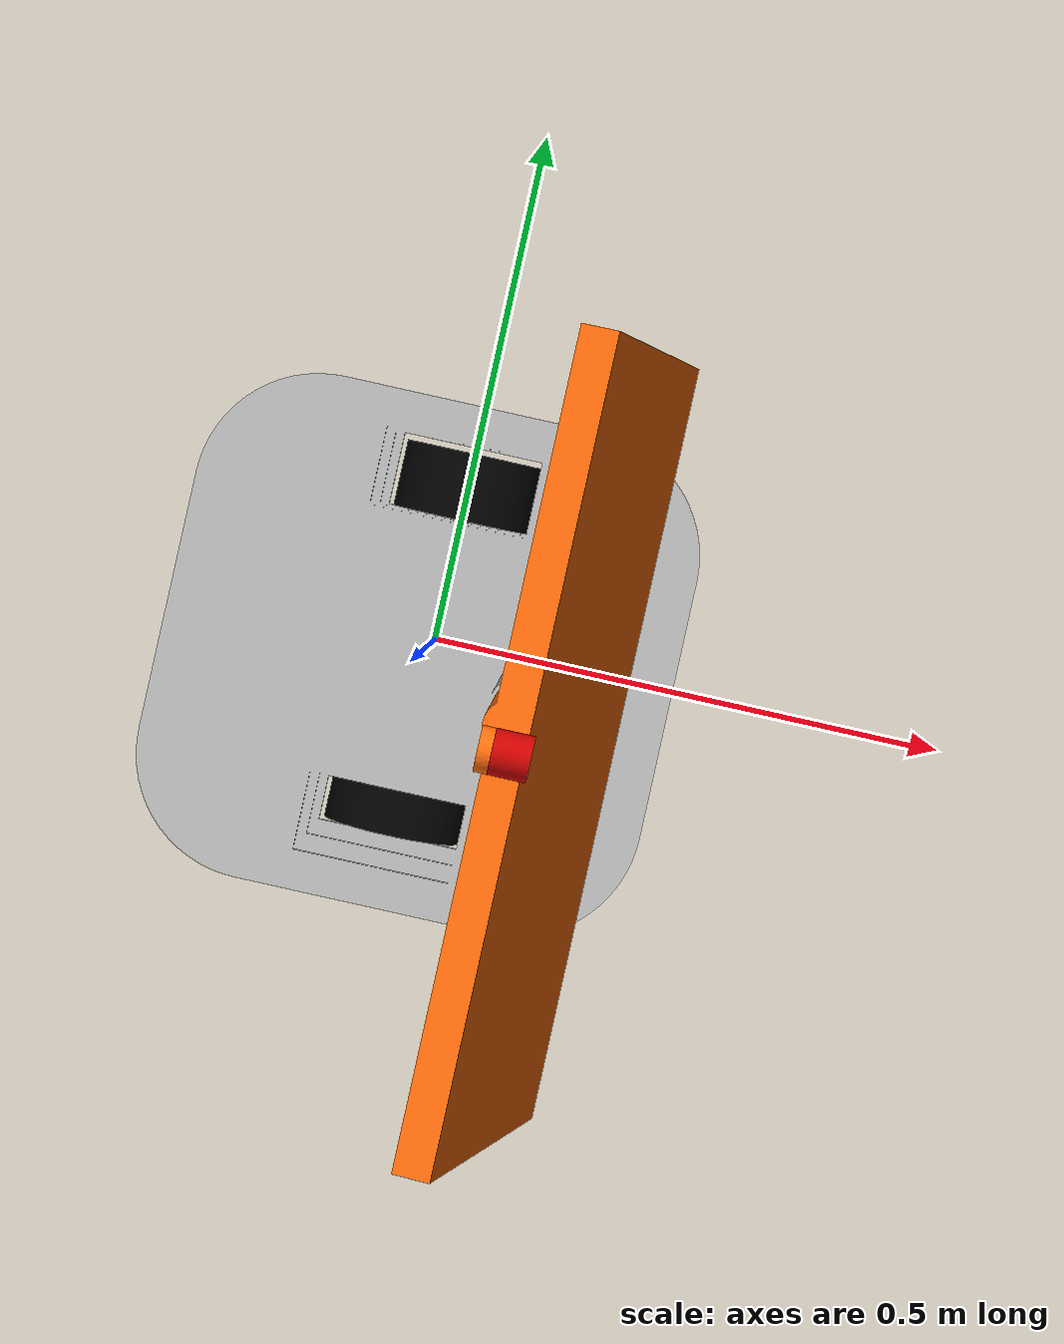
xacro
<?xml version="1.0" ?>
<robot name="TAYO_test" xmlns:xacro="http://www.ros.org/wiki/xacro">

<xacro:include filename="$(find TAYO_test_description)/urdf/materials.xacro" />
<xacro:include filename="$(find TAYO_test_description)/urdf/TAYO_test.trans" />
<xacro:include filename="$(find TAYO_test_description)/urdf/TAYO_test.gazebo" />
<link name="base_link">
  <inertial>
    <origin xyz="0.0028803173582110752 0.0 0.18605655046082087" rpy="0 0 0"/>
    <mass value="6.711469777903136"/>
    <inertia ixx="0.193004" iyy="0.210744" izz="0.166926" ixy="-0.0" iyz="-0.0" ixz="-0.007867"/>
  </inertial>
  <visual>
    <origin xyz="0 0 0" rpy="0 0 0"/>
    <geometry>
      <mesh filename="file://$(find TAYO_test_description)/meshes/base_link.stl" scale="0.001 0.001 0.001"/>
    </geometry>
    <material name="silver"/>
  </visual>
  <collision>
    <origin xyz="0 0 0" rpy="0 0 0"/>
    <geometry>
      <mesh filename="file://$(find TAYO_test_description)/meshes/base_link.stl" scale="0.001 0.001 0.001"/>
    </geometry>
  </collision>
</link>

<link name="right_wheel_1">
  <inertial>
    <origin xyz="-2.14128073229365e-17 -0.03200000000000003 0.0" rpy="0 0 0"/>
    <mass value="0.7900225877835323"/>
    <inertia ixx="0.001104" iyy="0.001669" izz="0.001104" ixy="-0.0" iyz="-0.0" ixz="-0.0"/>
  </inertial>
  <visual>
    <origin xyz="-0.0 0.12 -0.065" rpy="0 0 0"/>
    <geometry>
      <mesh filename="file://$(find TAYO_test_description)/meshes/right_wheel_1.stl" scale="0.001 0.001 0.001"/>
    </geometry>
    <material name="black"/>
  </visual>
  <collision>
    <origin xyz="-0.0 0.12 -0.065" rpy="0 0 0"/>
    <geometry>
      <mesh filename="file://$(find TAYO_test_description)/meshes/right_wheel_1.stl" scale="0.001 0.001 0.001"/>
    </geometry>
  </collision>
</link>

<link name="left_wheel_1">
  <inertial>
    <origin xyz="-2.14128073229365e-17 0.03200000000000003 0.0" rpy="0 0 0"/>
    <mass value="0.7900225877835323"/>
    <inertia ixx="0.001104" iyy="0.001669" izz="0.001104" ixy="-0.0" iyz="0.0" ixz="-0.0"/>
  </inertial>
  <visual>
    <origin xyz="-0.0 -0.12 -0.065" rpy="0 0 0"/>
    <geometry>
      <mesh filename="file://$(find TAYO_test_description)/meshes/left_wheel_1.stl" scale="0.001 0.001 0.001"/>
    </geometry>
    <material name="black"/>
  </visual>
  <collision>
    <origin xyz="-0.0 -0.12 -0.065" rpy="0 0 0"/>
    <geometry>
      <mesh filename="file://$(find TAYO_test_description)/meshes/left_wheel_1.stl" scale="0.001 0.001 0.001"/>
    </geometry>
  </collision>
</link>

<link name="actuator_1">
  <inertial>
    <origin xyz="0.028488110282179235 -1.0854817842170162e-16 0.28699337976007466" rpy="0 0 0"/>
    <mass value="14.478426699691301"/>
    <inertia ixx="0.629374" iyy="0.316333" izz="0.325608" ixy="-0.0" iyz="-0.0" ixz="0.004938"/>
  </inertial>
  <visual>
    <origin xyz="-0.1 -0.0 -0.818" rpy="0 0 0"/>
    <geometry>
      <mesh filename="file://$(find TAYO_test_description)/meshes/actuator_1.stl" scale="0.001 0.001 0.001"/>
    </geometry>
    <material name="orange"/>
  </visual>
  <collision>
    <origin xyz="-0.1 -0.0 -0.818" rpy="0 0 0"/>
    <geometry>
      <mesh filename="file://$(find TAYO_test_description)/meshes/actuator_1.stl" scale="0.001 0.001 0.001"/>
    </geometry>
  </collision>
</link>

<link name="lidar_1">
  <inertial>
    <origin xyz="0.0 6.153627405534786e-18 0.011250000000000038" rpy="0 0 0"/>
    <mass value="0.7251346379145354"/>
    <inertia ixx="0.000267" iyy="0.000267" izz="0.000474" ixy="0.0" iyz="0.0" ixz="0.0"/>
  </inertial>
  <visual>
    <origin xyz="-0.0 -0.0 -0.1697" rpy="0 0 0"/>
    <geometry>
      <mesh filename="file://$(find TAYO_test_description)/meshes/lidar_1.stl" scale="0.001 0.001 0.001"/>
    </geometry>
    <material name="red"/>
  </visual>
  <collision>
    <origin xyz="-0.0 -0.0 -0.1697" rpy="0 0 0"/>
    <geometry>
      <mesh filename="file://$(find TAYO_test_description)/meshes/lidar_1.stl" scale="0.001 0.001 0.001"/>
    </geometry>
  </collision>
</link>

<link name="imu_1">
  <inertial>
    <origin xyz="0.0 0.0 0.0010000000000000009" rpy="0 0 0"/>
    <mass value="0.006279999999999978"/>
    <inertia ixx="0.0" iyy="0.0" izz="0.0" ixy="0.0" iyz="-0.0" ixz="-0.0"/>
  </inertial>
  <visual>
    <origin xyz="-0.0 -0.0 -0.217" rpy="0 0 0"/>
    <geometry>
      <mesh filename="file://$(find TAYO_test_description)/meshes/imu_1.stl" scale="0.001 0.001 0.001"/>
    </geometry>
    <material name="blue"/>
  </visual>
  <collision>
    <origin xyz="-0.0 -0.0 -0.217" rpy="0 0 0"/>
    <geometry>
      <mesh filename="file://$(find TAYO_test_description)/meshes/imu_1.stl" scale="0.001 0.001 0.001"/>
    </geometry>
  </collision>
</link>

<link name="camera_1">
  <inertial>
    <origin xyz="0.012499999999999983 2.052428959883958e-17 0.0" rpy="0 0 0"/>
    <mass value="0.13872095061007444"/>
    <inertia ixx="1.6e-05" iyy="1.5e-05" izz="1.5e-05" ixy="0.0" iyz="0.0" ixz="-0.0"/>
  </inertial>
  <visual>
    <origin xyz="-0.094 -0.0 -1.32" rpy="0 0 0"/>
    <geometry>
      <mesh filename="file://$(find TAYO_test_description)/meshes/camera_1.stl" scale="0.001 0.001 0.001"/>
    </geometry>
    <material name="red"/>
  </visual>
  <collision>
    <origin xyz="-0.094 -0.0 -1.32" rpy="0 0 0"/>
    <geometry>
      <mesh filename="file://$(find TAYO_test_description)/meshes/camera_1.stl" scale="0.001 0.001 0.001"/>
    </geometry>
  </collision>
</link>

<joint name="Revolute 7" type="continuous">
  <origin xyz="0.0 -0.12 0.065" rpy="0 0 0"/>
  <parent link="base_link"/>
  <child link="right_wheel_1"/>
  <axis xyz="0.0 -1.0 0.0"/>
</joint>

<joint name="Revolute 8" type="continuous">
  <origin xyz="0.0 0.12 0.065" rpy="0 0 0"/>
  <parent link="base_link"/>
  <child link="left_wheel_1"/>
  <axis xyz="0.0 1.0 0.0"/>
</joint>

<joint name="Slider 9" type="prismatic">
  <origin xyz="0.1 0.0 0.818" rpy="0 0 0"/>
  <parent link="base_link"/>
  <child link="actuator_1"/>
  <axis xyz="0.0 0.0 -1.0"/>
  <limit upper="0.2" lower="-0.2" effort="100" velocity="100"/>
</joint>

<joint name="Rigid 10" type="fixed">
  <origin xyz="0.0 0.0 0.1697" rpy="0 0 0"/>
  <parent link="base_link"/>
  <child link="lidar_1"/>
</joint>

<joint name="Rigid 11" type="fixed">
  <origin xyz="0.0 0.0 0.217" rpy="0 0 0"/>
  <parent link="base_link"/>
  <child link="imu_1"/>
</joint>

<joint name="Rigid 12" type="fixed">
  <origin xyz="-0.006 0.0 0.502" rpy="0 0 0"/>
  <parent link="actuator_1"/>
  <child link="camera_1"/>
</joint>

</robot>

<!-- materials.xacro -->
<robot name="TAYO_test" xmlns:xacro="http://www.ros.org/wiki/xacro" >

<material name="silver">
  <color rgba="0.700 0.700 0.700 1.000"/>
</material>

<material name="black">
  <color rgba="0.000 0.000 0.000 1.000"/>
</material>

<material name="blue">
  <color rgba="0.000 0.000 0.800 1.000"/>
</material>

<material name="orange">
  <color rgba="1.000 0.4235 0.0392 1.000"/>
</material>

<material name="red">
  <color rgba="0.800 0.000 0.000 1.000"/>
</material>

</robot>

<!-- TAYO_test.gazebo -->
<robot name="TAYO_test" xmlns:xacro="http://www.ros.org/wiki/xacro" >

<xacro:property name="body_color" value="Gazebo/Silver" />

<gazebo>
  <plugin name="control" filename="libgazebo_ros_control.so"/>
</gazebo>
<gazebo reference="base_link">
  <material>${body_color}</material>
  <mu1>0.2</mu1>
  <mu2>0.2</mu2>
  <self_collide>true</self_collide>
  <gravity>true</gravity>
</gazebo>

<gazebo reference="right_wheel_1">
  <material>${body_color}</material>
  <mu1>0.2</mu1>
  <mu2>0.2</mu2>
  <self_collide>true</self_collide>
</gazebo>

<gazebo reference="left_wheel_1">
  <material>${body_color}</material>
  <mu1>0.2</mu1>
  <mu2>0.2</mu2>
  <self_collide>true</self_collide>
</gazebo>

<gazebo reference="actuator_1">
  <material>${body_color}</material>
  <mu1>0.2</mu1>
  <mu2>0.2</mu2>
  <self_collide>true</self_collide>
</gazebo>

<gazebo reference="lidar_1">
  <material>${body_color}</material>
  <mu1>0.2</mu1>
  <mu2>0.2</mu2>
  <self_collide>true</self_collide>
</gazebo>

<gazebo reference="imu_1">
  <material>${body_color}</material>
  <mu1>0.2</mu1>
  <mu2>0.2</mu2>
  <self_collide>true</self_collide>
</gazebo>

<gazebo reference="camera_1">
  <material>${body_color}</material>
  <mu1>0.2</mu1>
  <mu2>0.2</mu2>
  <self_collide>true</self_collide>
</gazebo>

</robot>
